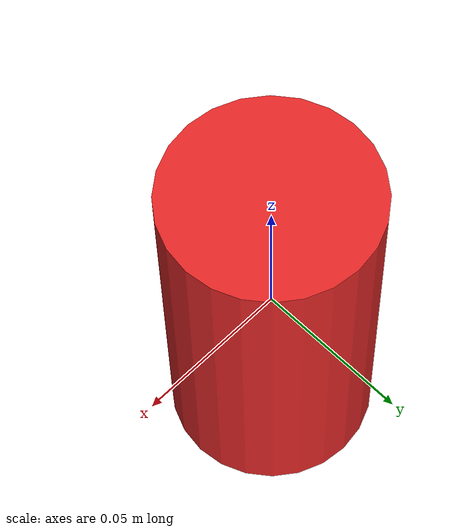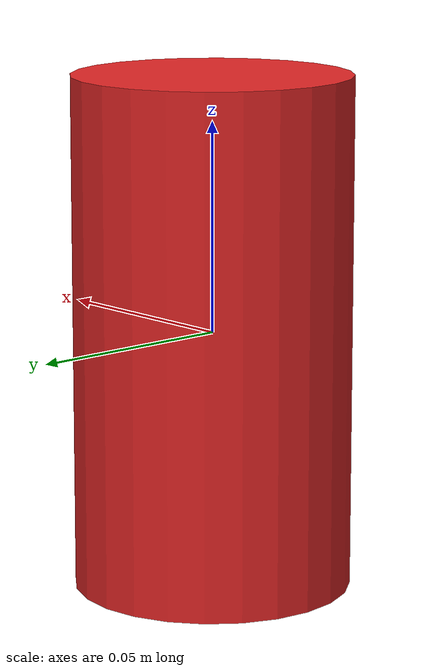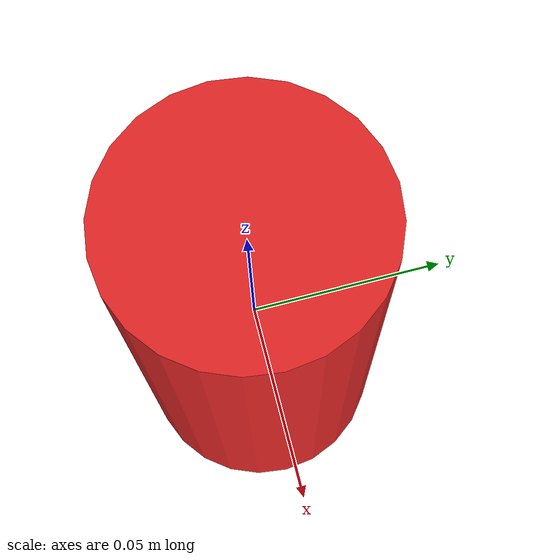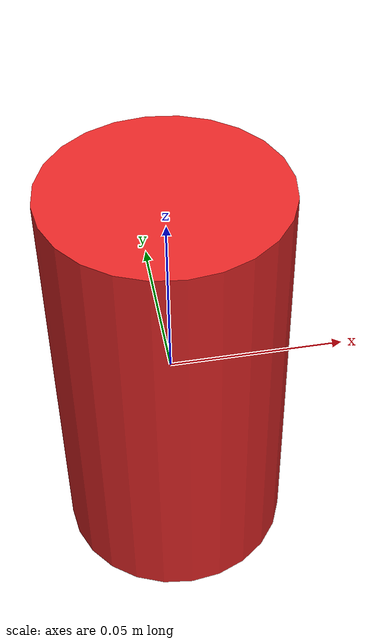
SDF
<?xml version="1.0" ?>
<sdf version="1.6">
  <model name="test_obj">
    <link name="link">
      <gravity>0</gravity>
      <inertial>
        <mass>0.39</mass>
        <inertia>
          <ixx>0.00058</ixx><iyy>0.00058</iyy><izz>0.00021</izz>
          <ixy>0</ixy><ixz>0</ixz><iyz>0</iyz>
        </inertia>
      </inertial>
      <collision name="collision">
        <geometry>
          <cylinder>
            <radius>0.033</radius>
            <length>0.122</length>
          </cylinder>
        </geometry>
        <surface>
          <contact>
            <collide_bitmask>0x00</collide_bitmask>
          </contact>
        </surface>
      </collision>
      <visual name="visual">
        <geometry>
          <cylinder>
            <radius>0.033</radius>
            <length>0.122</length>
          </cylinder>
        </geometry>
        <material>
          <ambient>0.8 0.1 0.1 1</ambient>
          <diffuse>0.9 0.15 0.15 1</diffuse>
          <specular>0.2 0.2 0.2 1</specular>
        </material>
      </visual>
    </link>
  </model>
</sdf>
